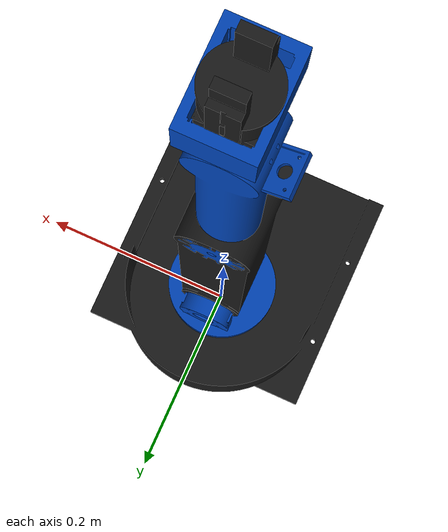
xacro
<?xml version="1.0"?>
<robot name="astari_selah" xmlns:xacro="http://www.ros.org/wiki/xacro">

  <!-- Include visual materials & Gazebo properties -->
  <xacro:include filename="materials.xacro" />
  <xacro:include filename="astari_selah.gazebo.xacro" />

  <!-- World Frame Connection -->
  <link name="world"/>

  <joint name="world_to_base" type="fixed">
    <parent link="world"/>
    <child link="base_link"/>
    <origin xyz="0 0 0" rpy="0 0 0"/>
  </joint>

  <!-- 1. BASE LINK (Fused E.R.A Anti-Tipping Base + CHIMERA D-Profile Turret)    -->
  <link name="base_link">
    <visual>
      <origin xyz="0 0 0" rpy="0 0 0"/>
      <geometry>
        <mesh filename="package://astari_selah_description/meshes/visual/base_link.stl" scale="0.001 0.001 0.001"/>
      </geometry>
      <material name="cad_black"/>
    </visual>
    <collision>
      <origin xyz="0 0 0" rpy="0 0 0"/>
      <geometry>
        <mesh filename="package://astari_selah_description/meshes/collision/base_link.stl" scale="0.001 0.001 0.001"/>
      </geometry>
    </collision>
    <inertial>
      <origin xyz="0.0 -0.065 0.045" rpy="0 0 0"/>
      <mass value="1.354"/>
      <inertia ixx="0.00712" ixy="0.0" ixz="0.0"
               iyy="0.00845" iyz="0.00031"
               izz="0.01254"/>
    </inertial>
  </link>

  <!-- 2. JOINT 1: BASE YAW (NEMA 17 + 10:1 Planetary Gearbox, 10° to 170°)       -->
  <joint name="joint1_base_yaw" type="revolute">
    <parent link="base_link"/>
    <child link="link1_shoulder_yoke"/>
    <origin xyz="0 0 0.090" rpy="0 0 0"/>
    <axis xyz="0 0 1"/>
    <!-- Limits: 10° = 0.1745 rad, 170° = 2.9671 rad, Home = 90° = 1.5708 rad -->
    <limit lower="0.1745" upper="2.9671" effort="15.0" velocity="2.0"/>
    <dynamics damping="0.8" friction="0.2"/>
  </joint>

  <!-- Link 1: Shoulder Yoke (Dual-Bearing Moment Decoupling, H = 70mm pitch elevation) -->
  <link name="link1_shoulder_yoke">
    <visual>
      <origin xyz="0 0 0" rpy="0 0 0"/>
      <geometry>
        <mesh filename="package://astari_selah_description/meshes/visual/shoulder_link.stl" scale="0.001 0.001 0.001"/>
      </geometry>
      <material name="cad_blue"/>
    </visual>
    <collision>
      <origin xyz="0 0 0" rpy="0 0 0"/>
      <geometry>
        <mesh filename="package://astari_selah_description/meshes/collision/shoulder_link.stl" scale="0.001 0.001 0.001"/>
      </geometry>
    </collision>
    <inertial>
      <origin xyz="-0.00083 0.0 0.02613" rpy="0 0 0"/>
      <mass value="0.9232"/>
      <inertia ixx="0.001320" ixy="0.0" ixz="3.355e-05"
               iyy="0.001925" iyz="0.0"
               izz="0.001385"/>
    </inertial>
  </link>

  <!-- 3. JOINT 2: SHOULDER PITCH (NEMA 17 + 10:1 Planetary Gearbox, 0° to 90°)   -->
  <joint name="joint2_shoulder_pitch" type="revolute">
    <parent link="link1_shoulder_yoke"/>
    <child link="link2_upper_arm"/>
    <origin xyz="0 0 0.070" rpy="0 0 0"/>
    <axis xyz="0 1 0"/>
    <limit lower="0.0" upper="1.5708" effort="18.0" velocity="1.5"/>
    <dynamics damping="1.0" friction="0.3"/>
  </joint>

  <!-- Link 2: Upper Arm (E.R.A-Derived Ribbed Spar, 280.0 mm Center-to-Center) -->
  <link name="link2_upper_arm">
    <visual>
      <origin xyz="0 0 0" rpy="0 0 0"/>
      <geometry>
        <mesh filename="package://astari_selah_description/meshes/visual/upper_arm_link.stl" scale="0.001 0.001 0.001"/>
      </geometry>
      <material name="cad_black"/>
    </visual>
    <collision>
      <origin xyz="0 0 0" rpy="0 0 0"/>
      <geometry>
        <mesh filename="package://astari_selah_description/meshes/collision/upper_arm_link.stl" scale="0.001 0.001 0.001"/>
      </geometry>
    </collision>
    <inertial>
      <origin xyz="-0.0006 0.0 0.13976" rpy="0 0 0"/>
      <mass value="1.0131"/>
      <inertia ixx="0.013884" ixy="0.0" ixz="8.488e-05"
               iyy="0.013914" iyz="0.0"
               izz="0.000773"/>
    </inertial>
  </link>

  <!-- 4. JOINT 3: ELBOW PITCH (NEMA 17 + 5:1 Planetary Gearbox, 0° to 120°)      -->
  <joint name="joint3_elbow_pitch" type="revolute">
    <parent link="link2_upper_arm"/>
    <child link="link3_forearm"/>
    <origin xyz="0 0 0.280" rpy="0 0 0"/>
    <axis xyz="0 1 0"/>
    <limit lower="0.0" upper="2.0944" effort="8.0" velocity="2.5"/>
    <dynamics damping="0.5" friction="0.15"/>
  </joint>

  <!-- Link 3: Forearm (CHIMERA Casing + Vision Shelf, 230.0 mm Center-to-Center) -->
  <link name="link3_forearm">
    <visual>
      <origin xyz="0 0 0" rpy="0 0 0"/>
      <geometry>
        <mesh filename="package://astari_selah_description/meshes/visual/forearm_link.stl" scale="0.001 0.001 0.001"/>
      </geometry>
      <material name="cad_blue"/>
    </visual>
    <collision>
      <origin xyz="0 0 0" rpy="0 0 0"/>
      <geometry>
        <mesh filename="package://astari_selah_description/meshes/collision/forearm_link.stl" scale="0.001 0.001 0.001"/>
      </geometry>
    </collision>
    <inertial>
      <origin xyz="0.0 0.00318 0.11621" rpy="0 0 0"/>
      <mass value="0.4873"/>
      <inertia ixx="0.002847" ixy="0.0" ixz="0.0"
               iyy="0.002821" iyz="-3.896e-05"
               izz="0.000185"/>
    </inertial>
  </link>

  <!-- ESP32-CAM OPTICAL FRAME (Mounted at 210mm on Forearm, 20° downward tilt)  -->
  <link name="camera_link"/>

  <joint name="camera_joint" type="fixed">
    <parent link="link3_forearm"/>
    <child link="camera_link"/>
    <origin xyz="0 0.022 0.210" rpy="0.3491 0 0"/>
  </joint>

  <!-- 5. JOINT 4: WRIST PITCH (TowerPro MG996R, -90° to +90°)                   -->
  <joint name="joint4_wrist_pitch" type="revolute">
    <parent link="link3_forearm"/>
    <child link="link4_wrist"/>
    <origin xyz="0 0 0.230" rpy="0 0 0"/>
    <axis xyz="0 1 0"/>
    <limit lower="-1.5708" upper="1.5708" effort="1.2" velocity="3.0"/>
    <dynamics damping="0.2" friction="0.05"/>
  </joint>

  <!-- Link 4: Wrist Link (90.0 mm Center-to-Center) -->
  <link name="link4_wrist">
    <visual>
      <origin xyz="0 0 0" rpy="0 0 0"/>
      <geometry>
        <mesh filename="package://astari_selah_description/meshes/visual/wrist_link.stl" scale="0.001 0.001 0.001"/>
      </geometry>
      <material name="cad_black"/>
    </visual>
    <collision>
      <origin xyz="0 0 0" rpy="0 0 0"/>
      <geometry>
        <mesh filename="package://astari_selah_description/meshes/collision/wrist_link.stl" scale="0.001 0.001 0.001"/>
      </geometry>
    </collision>
    <inertial>
      <origin xyz="0.0 0.0 0.04616" rpy="0 0 0"/>
      <mass value="0.2025"/>
      <inertia ixx="0.000215" ixy="0.0" ixz="0.0"
               iyy="0.000212" iyz="0.0"
               izz="6.282e-05"/>
    </inertial>
  </link>

  <!-- 6. GRIPPER BASE ATTACHMENT (Fixed Bracket at Z = 90mm on Wrist)           -->
  <joint name="gripper_base_joint" type="fixed">
    <parent link="link4_wrist"/>
    <child link="gripper_base"/>
    <origin xyz="0 0 0.090" rpy="0 0 0"/>
  </joint>

  <link name="gripper_base">
    <visual>
      <origin xyz="0 0 0" rpy="0 0 0"/>
      <geometry>
        <mesh filename="package://astari_selah_description/meshes/visual/gripper_base_link.stl" scale="0.001 0.001 0.001"/>
      </geometry>
      <material name="cad_blue"/>
    </visual>
    <collision>
      <origin xyz="0 0 0" rpy="0 0 0"/>
      <geometry>
        <mesh filename="package://astari_selah_description/meshes/collision/gripper_base_link.stl" scale="0.001 0.001 0.001"/>
      </geometry>
    </collision>
    <inertial>
      <origin xyz="0.0 0.0 0.00115" rpy="0 0 0"/>
      <mass value="0.0742"/>
      <inertia ixx="2.518e-05" ixy="0.0" ixz="0.0"
               iyy="4.321e-05" iyz="0.0"
               izz="5.102e-05"/>
    </inertial>
  </link>

  <!-- 7. JOINT 5: GRIPPER LEFT FINGER (MG996R Geared, 80mm Max Opening)         -->
  <joint name="joint5_gripper_left" type="revolute">
    <parent link="gripper_base"/>
    <child link="gripper_left_finger"/>
    <origin xyz="-0.018 0 0.010" rpy="0 0 0"/>
    <axis xyz="0 1 0"/>
    <!-- Travel angle: 0.0 (closed) to 0.7854 rad (45° open = 80mm span) -->
    <limit lower="0.0" upper="0.7854" effort="1.2" velocity="2.0"/>
    <dynamics damping="0.1" friction="0.05"/>
  </joint>

  <link name="gripper_left_finger">
    <visual>
      <origin xyz="0 0 0" rpy="0 0 0"/>
      <geometry>
        <mesh filename="package://astari_selah_description/meshes/visual/gripper_left_finger.stl" scale="0.001 0.001 0.001"/>
      </geometry>
      <material name="cad_black"/>
    </visual>
    <collision>
      <origin xyz="0 0 0" rpy="0 0 0"/>
      <geometry>
        <mesh filename="package://astari_selah_description/meshes/collision/gripper_left_finger.stl" scale="0.001 0.001 0.001"/>
      </geometry>
    </collision>
    <inertial>
      <origin xyz="0.00030 0.0 -0.00297" rpy="0 0 0"/>
      <mass value="0.0201"/>
      <inertia ixx="1.584e-05" ixy="0.0" ixz="0.0"
               iyy="1.539e-05" iyz="0.0"
               izz="9.078e-07"/>
    </inertial>
  </link>

  <!-- 8. GRIPPER RIGHT FINGER (Counter-rotating geared jaw)                     -->
  <joint name="joint5_gripper_right" type="revolute">
    <parent link="gripper_base"/>
    <child link="gripper_right_finger"/>
    <origin xyz="0.018 0 0.010" rpy="0 0 0"/>
    <axis xyz="0 1 0"/>
    <mimic joint="joint5_gripper_left" multiplier="-1.0" offset="0.0"/>
    <limit lower="-0.7854" upper="0.0" effort="1.2" velocity="2.0"/>
    <dynamics damping="0.1" friction="0.05"/>
  </joint>

  <link name="gripper_right_finger">
    <visual>
      <origin xyz="0 0 0" rpy="0 0 0"/>
      <geometry>
        <mesh filename="package://astari_selah_description/meshes/visual/gripper_right_finger.stl" scale="0.001 0.001 0.001"/>
      </geometry>
      <material name="cad_black"/>
    </visual>
    <collision>
      <origin xyz="0 0 0" rpy="0 0 0"/>
      <geometry>
        <mesh filename="package://astari_selah_description/meshes/collision/gripper_right_finger.stl" scale="0.001 0.001 0.001"/>
      </geometry>
    </collision>
    <inertial>
      <origin xyz="-0.00027 0.0 -0.00277" rpy="0 0 0"/>
      <mass value="0.0202"/>
      <inertia ixx="1.596e-05" ixy="0.0" ixz="0.0"
               iyy="1.551e-05" iyz="0.0"
               izz="9.134e-07"/>
    </inertial>
  </link>

  <!-- 9. FSR 402 TACTILE PRESSURE SENSOR FRAME (In left finger pad recess)      -->
  <link name="fsr_sensor_frame"/>

  <joint name="fsr_sensor_joint" type="fixed">
    <parent link="gripper_left_finger"/>
    <child link="fsr_sensor_frame"/>
    <origin xyz="-0.006 0.0 0.035" rpy="0 0 0"/>
  </joint>

  <!-- 10. TOOL CENTER POINT (TCP) AT 100mm CLOSED CLAW TIP                      -->
  <link name="tcp_link"/>

  <joint name="tcp_joint" type="fixed">
    <parent link="gripper_base"/>
    <child link="tcp_link"/>
    <origin xyz="0 0 0.100" rpy="0 0 0"/>
  </joint>

</robot>

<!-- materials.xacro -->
<robot xmlns:xacro="http://www.ros.org/wiki/xacro">
  <!-- Color definitions matching CAD 3D model specification -->
  <material name="cad_blue">
    <color rgba="0.0 0.27 0.73 1.0"/>
  </material>

  <material name="cad_black">
    <color rgba="0.10 0.10 0.10 1.0"/>
  </material>

  <material name="cad_chrome">
    <color rgba="0.78 0.80 0.82 1.0"/>
  </material>

  <material name="cad_steel">
    <color rgba="0.55 0.57 0.58 1.0"/>
  </material>

  <material name="cad_servo_black">
    <color rgba="0.12 0.12 0.14 1.0"/>
  </material>

  <material name="cad_copper">
    <color rgba="0.85 0.53 0.28 1.0"/>
  </material>
</robot>
